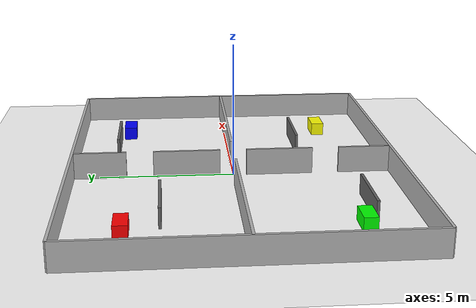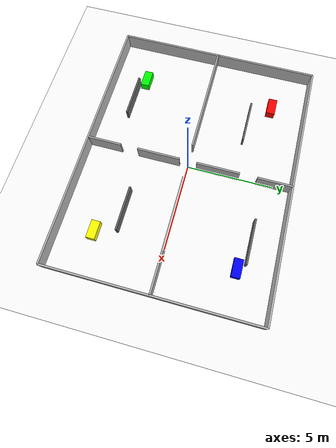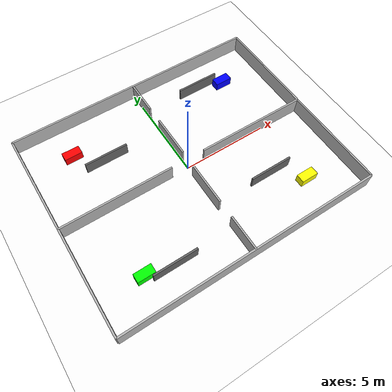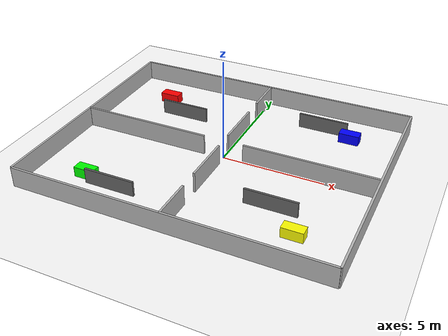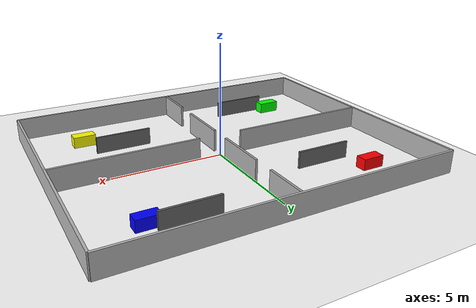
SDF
<?xml version="1.0" ?>
<sdf version="1.7">
  <world name="warehouse_world">

    <plugin filename="gz-sim-physics-system" name="gz::sim::systems::Physics"/>
    <plugin filename="gz-sim-user-commands-system" name="gz::sim::systems::UserCommands"/>
    <plugin filename="gz-sim-scene-broadcaster-system" name="gz::sim::systems::SceneBroadcaster"/>
    <plugin filename="gz-sim-sensors-system" name="gz::sim::systems::Sensors">
      <render_engine>ogre</render_engine>
    </plugin>

    <include>
      <uri>https://fuel.gazebosim.org/1.0/OpenRobotics/models/Sun</uri>
    </include>

    <model name="white_floor">
      <static>true</static>
      <pose>0 0 0 0 0 0</pose>
      <link name="floor_link">
        <collision name="collision">
          <geometry>
            <plane>
              <normal>0 0 1</normal>
              <size>20 20</size>
            </plane>
          </geometry>
        </collision>
        <visual name="visual">
          <geometry>
            <plane>
              <normal>0 0 1</normal>
              <size>20 20</size>
            </plane>
          </geometry>
          <material>
            <ambient>1 1 1 1</ambient>
            <diffuse>1 1 1 1</diffuse>
            <specular>0.1 0.1 0.1 1</specular>
          </material>
        </visual>
      </link>
    </model>

    <model name="wall_north">
      <static>true</static>
      <pose>0 6 0.5 0 0 0</pose>
      <link name="link">
        <collision name="collision"><geometry><box><size>15 0.1 1</size></box></geometry></collision>
        <visual name="visual"><geometry><box><size>15 0.1 1</size></box></geometry></visual>
      </link>
    </model>

    <model name="wall_south">
      <static>true</static>
      <pose>0 -6 0.5 0 0 0</pose>
      <link name="link">
        <collision name="collision"><geometry><box><size>15 0.1 1</size></box></geometry></collision>
        <visual name="visual"><geometry><box><size>15 0.1 1</size></box></geometry></visual>
      </link>
    </model>

    <model name="wall_east">
      <static>true</static>
      <pose>7.5 0 0.5 0 0 0</pose>
      <link name="link">
        <collision name="collision"><geometry><box><size>0.1 12 1</size></box></geometry></collision>
        <visual name="visual"><geometry><box><size>0.1 12 1</size></box></geometry></visual>
      </link>
    </model>

    <model name="wall_west">
      <static>true</static>
      <pose>-7.5 0 0.5 0 0 0</pose>
      <link name="link">
        <collision name="collision"><geometry><box><size>0.1 12 1</size></box></geometry></collision>
        <visual name="visual"><geometry><box><size>0.1 12 1</size></box></geometry></visual>
      </link>
    </model>

    <model name="mid_wall_left">
      <static>true</static>
      <pose>-4.25 0 0.5 0 0 0</pose>
      <link name="link">
        <collision name="collision"><geometry><box><size>6.5 0.1 1</size></box></geometry></collision>
        <visual name="visual">
          <geometry><box><size>6.5 0.1 1</size></box></geometry>
          <material><ambient>0.7 0.7 0.7 1</ambient><diffuse>0.7 0.7 0.7 1</diffuse></material>
        </visual>
      </link>
    </model>

    <model name="mid_wall_right">
      <static>true</static>
      <pose>4.25 0 0.5 0 0 0</pose>
      <link name="link">
        <collision name="collision"><geometry><box><size>6.5 0.1 1</size></box></geometry></collision>
        <visual name="visual">
          <geometry><box><size>6.5 0.1 1</size></box></geometry>
          <material><ambient>0.7 0.7 0.7 1</ambient><diffuse>0.7 0.7 0.7 1</diffuse></material>
        </visual>
      </link>
    </model>

    <model name="mid_vertical_top">
      <static>true</static>
      <pose>0 5 0.5 0 0 0</pose>
      <link name="link">
        <collision name="collision"><geometry><box><size>0.1 2 1</size></box></geometry></collision>
        <visual name="visual">
          <geometry><box><size>0.1 2 1</size></box></geometry>
          <material><ambient>0.7 0.7 0.7 1</ambient><diffuse>0.7 0.7 0.7 1</diffuse></material>
        </visual>
      </link>
    </model>

    <model name="mid_vertical_upper">
      <static>true</static>
      <pose>0 1.75 0.5 0 0 0</pose>
      <link name="link">
        <collision name="collision"><geometry><box><size>0.1 2.5 1</size></box></geometry></collision>
        <visual name="visual">
          <geometry><box><size>0.1 2.5 1</size></box></geometry>
          <material><ambient>0.7 0.7 0.7 1</ambient><diffuse>0.7 0.7 0.7 1</diffuse></material>
        </visual>
      </link>
    </model>

    <model name="mid_vertical_lower">
      <static>true</static>
      <pose>0 -1.75 0.5 0 0 0</pose>
      <link name="link">
        <collision name="collision"><geometry><box><size>0.1 2.5 1</size></box></geometry></collision>
        <visual name="visual">
          <geometry><box><size>0.1 2.5 1</size></box></geometry>
          <material><ambient>0.7 0.7 0.7 1</ambient><diffuse>0.7 0.7 0.7 1</diffuse></material>
        </visual>
      </link>
    </model>

    <model name="mid_vertical_bottom">
      <static>true</static>
      <pose>0 -5 0.5 0 0 0</pose>
      <link name="link">
        <collision name="collision"><geometry><box><size>0.1 2 1</size></box></geometry></collision>
        <visual name="visual">
          <geometry><box><size>0.1 2 1</size></box></geometry>
          <material><ambient>0.7 0.7 0.7 1</ambient><diffuse>0.7 0.7 0.7 1</diffuse></material>
        </visual>
      </link>
    </model>

    <model name="blocker_tl">
      <static>true</static>
      <pose>-3.5 2.75 0.375 0 0 0</pose>
      <link name="link">
        <collision name="collision"><geometry><box><size>2.5 0.1 0.75</size></box></geometry></collision>
        <visual name="visual">
          <geometry><box><size>2.5 0.1 0.75</size></box></geometry>
          <material><ambient>0.4 0.4 0.4 1</ambient><diffuse>0.4 0.4 0.4 1</diffuse></material>
        </visual>
      </link>
    </model>

    <model name="blocker_tr">
      <static>true</static>
      <pose>3.5 4.4 0.375 0 0 0</pose>
      <link name="link">
        <collision name="collision"><geometry><box><size>2.5 0.1 0.75</size></box></geometry></collision>
        <visual name="visual">
          <geometry><box><size>2.5 0.1 0.75</size></box></geometry>
          <material><ambient>0.4 0.4 0.4 1</ambient><diffuse>0.4 0.4 0.4 1</diffuse></material>
        </visual>
      </link>
    </model>

    <model name="blocker_bl">
      <static>true</static>
      <pose>-3.5 -4.4 0.375 0 0 0</pose>
      <link name="link">
        <collision name="collision"><geometry><box><size>2.5 0.1 0.75</size></box></geometry></collision>
        <visual name="visual">
          <geometry><box><size>2.5 0.1 0.75</size></box></geometry>
          <material><ambient>0.4 0.4 0.4 1</ambient><diffuse>0.4 0.4 0.4 1</diffuse></material>
        </visual>
      </link>
    </model>

    <model name="blocker_br">
      <static>true</static>
      <pose>3.5 -2.75 0.375 0 0 0</pose>
      <link name="link">
        <collision name="collision"><geometry><box><size>2.5 0.1 0.75</size></box></geometry></collision>
        <visual name="visual">
          <geometry><box><size>2.5 0.1 0.75</size></box></geometry>
          <material><ambient>0.4 0.4 0.4 1</ambient><diffuse>0.4 0.4 0.4 1</diffuse></material>
        </visual>
      </link>
    </model>

    <model name="shelf_red">
      <static>true</static>
      <pose>-5 4 0.25 0 0 0</pose>
      <link name="link">
        <collision name="collision"><geometry><box><size>1 0.5 0.5</size></box></geometry></collision>
        <visual name="visual">
          <geometry><box><size>1 0.5 0.5</size></box></geometry>
          <material><ambient>1 0 0 1</ambient><diffuse>1 0 0 1</diffuse></material>
        </visual>
      </link>
    </model>

    <model name="shelf_blue">
      <static>true</static>
      <pose>5 4 0.25 0 0 0</pose>
      <link name="link">
        <collision name="collision"><geometry><box><size>1 0.5 0.5</size></box></geometry></collision>
        <visual name="visual">
          <geometry><box><size>1 0.5 0.5</size></box></geometry>
          <material><ambient>0 0 1 1</ambient><diffuse>0 0 1 1</diffuse></material>
        </visual>
      </link>
    </model>

    <model name="shelf_green">
      <static>true</static>
      <pose>-5 -4 0.25 0 0 0</pose>
      <link name="link">
        <collision name="collision"><geometry><box><size>1 0.5 0.5</size></box></geometry></collision>
        <visual name="visual">
          <geometry><box><size>1 0.5 0.5</size></box></geometry>
          <material><ambient>0 1 0 1</ambient><diffuse>0 1 0 1</diffuse></material>
        </visual>
      </link>
    </model>

    <model name="shelf_yellow">
      <static>true</static>
      <pose>5 -4 0.25 0 0 0</pose>
      <link name="link">
        <collision name="collision"><geometry><box><size>1 0.5 0.5</size></box></geometry></collision>
        <visual name="visual">
          <geometry><box><size>1 0.5 0.5</size></box></geometry>
          <material><ambient>1 1 0 1</ambient><diffuse>1 1 0 1</diffuse></material>
        </visual>
      </link>
    </model>

  </world>
</sdf>
